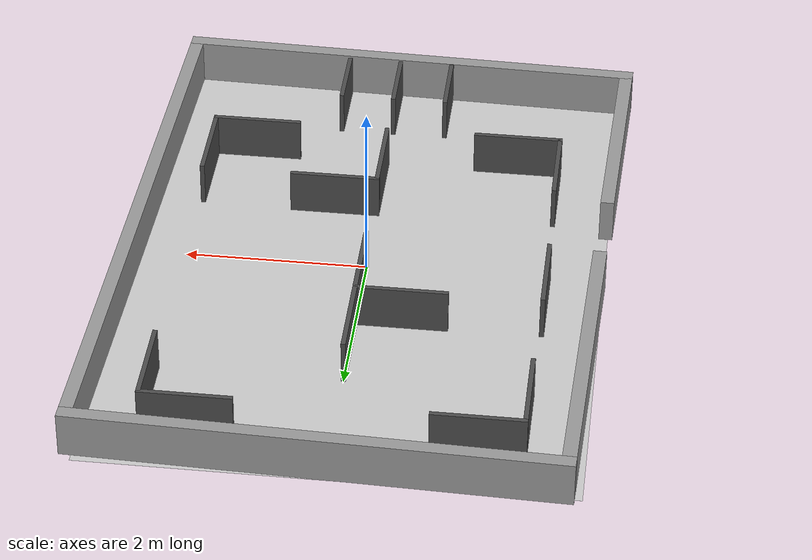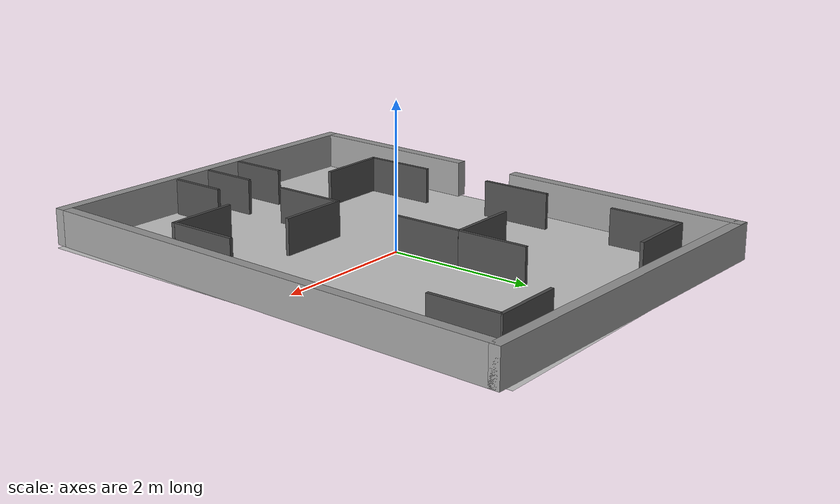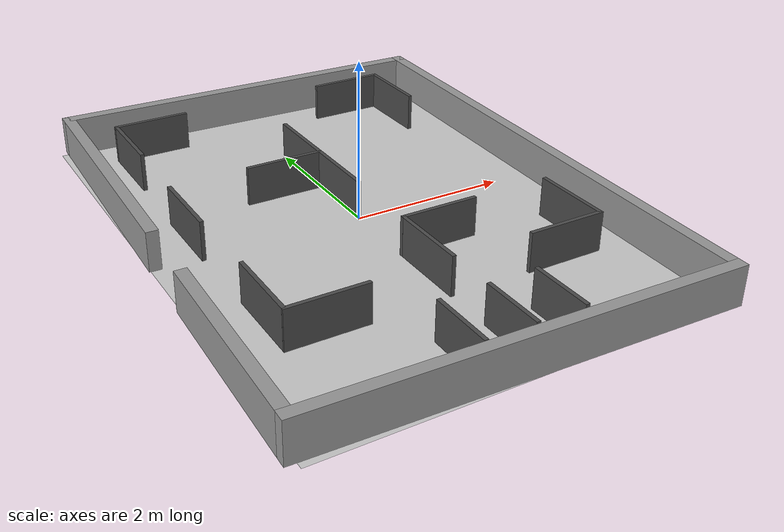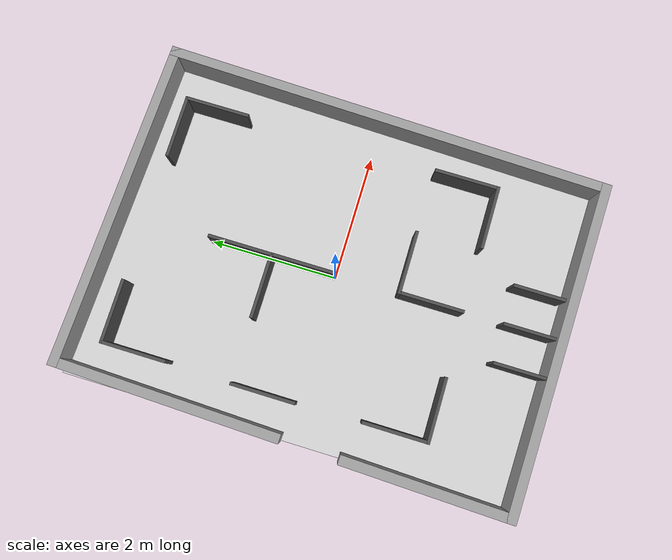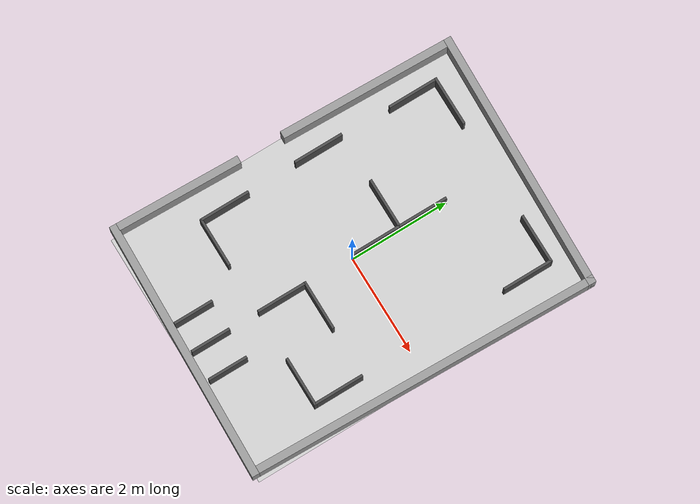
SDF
<?xml version="1.0"?>
<sdf version="1.4">
  <world name="responde">
    <scene>
      <ambient>0.8 0.8 0.8 1</ambient>
      <background>0.7 0.7 0.7 1</background>
      <shadows>true</shadows>
    </scene>

  <!-- A global light source  -->
    <include>
      <uri>model://sun</uri>
      <pose> -2.0 2.0 2.0 0 0 0</pose>
    </include>

  <!-- Piso da sala -->
    <include>
      <uri>model://responde/pisosala</uri>
      <pose> 0 0 0 0 0 -1.6</pose>
    </include>

  <!-- parede -->
    <include>
      <uri>model://responde/parede</uri>
      <pose> 0 0 0 0 0 -1.6</pose>
    </include>

  <!-- parede de separacao -->
    <include>
      <uri>model://responde/parede_01</uri>
      <pose> -1.5 3 0.25 0 0 0</pose>
    </include>
    <include>
      <uri>model://responde/parede_02</uri>
      <pose> -1.975 2.5 0.25 0 0 1.57</pose>
    </include>
    <include>
      <uri>model://responde/parede_07</uri>
      <pose> 1.5 3 0.25 0 0 0</pose>
    </include>
    <include>
      <uri>model://responde/parede_08</uri>
      <pose> 1.975 2.5 0.25 0 0 1.57</pose>
    </include>
    <include>
      <uri>model://responde/parede_03</uri>
      <pose> -1.5 -2.0 0.25 0 0 0</pose>
    </include>
    <include>
      <uri>model://responde/parede_04</uri>
      <pose> -1.975 -1.5 0.25 0 0 1.57</pose>
    </include>
    <include>
      <uri>model://responde/parede_05</uri>
      <pose> 1.975 -1.5 0.25 0 0 1.57</pose>
    </include>
    <include>
      <uri>model://responde/parede_06</uri>
      <pose> 1.5 -2.0 0.25 0 0 0</pose>
    </include>
    <include>
      <uri>model://responde/parede_09</uri>
      <pose> 0 -3 0.25 0 0 1.57</pose>
    </include>
    <include>
      <uri>model://responde/parede_10</uri>
      <pose> -0.6 -3 0.25 0 0 1.57</pose>
    </include>
    <include>
      <uri>model://responde/parede_11</uri>
      <pose> 0.6 -3 0.25 0 0 1.57</pose>
    </include>
    <include>
      <uri>model://responde/parede_12</uri>
      <pose> 0 -1.5 0.25 0 0 1.57</pose>
    </include>
    <include>
      <uri>model://responde/parede_13</uri>
      <pose> 0.475 -1.0 0.25 0 0 0</pose>
    </include>
    <include>
      <uri>model://responde/parede_14</uri>
      <pose> -2 0.5 0.25 0 0 1.57</pose>
    </include>
    <include>
      <uri>model://responde/parede_15</uri>
      <pose> 0 0.5 0.25 0 0 1.57</pose>
    </include>
    <include>
      <uri>model://responde/parede_16</uri>
      <pose> 0 1.5 0.25 0 0 1.57</pose>
    </include>
    <include>
      <uri>model://responde/parede_17</uri>
      <pose> -0.5 1 0.25 0 0 0</pose>
    </include>

  <!-- fisica do mundo -->
    <physics type="ode">
      <real_time_update_rate>1000.0</real_time_update_rate>
      <max_step_size>0.001</max_step_size>
      <real_time_factor>1</real_time_factor>
      <ode>
        <solver>
          <type>quick</type>
          <iters>150</iters>
          <precon_iters>0</precon_iters>
          <sor>1.400000</sor>
          <use_dynamic_moi_rescaling>1</use_dynamic_moi_rescaling>
        </solver>
        <constraints>
          <cfm>0.00001</cfm>
          <erp>0.2</erp>
          <contact_max_correcting_vel>2000.000000</contact_max_correcting_vel>
          <contact_surface_layer>0.01000</contact_surface_layer>
        </constraints>
      </ode>
    </physics>

  <!-- posicao camera inicial -->
    <gui fullscreen='0'>
      <camera name='user_camera'>
        <pose frame=''>0.238775 -6.8831 10.8485 -0 0.979642 1.5602</pose>
        <view_controller>orbit</view_controller>
        <projection_type>perspective</projection_type>
      </camera>
    </gui>

  </world>

</sdf>

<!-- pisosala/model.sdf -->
<sdf version="1.6">
  <model name="piso_sala">
    <static>true</static>
    <link name="course_link">
      <collision name="course_collision">
        <geometry>
          <plane>
            <normal>0 0 1</normal>
            <size>7 5</size>
          </plane>
        </geometry>
        <surface>
          <friction>
            <ode>
              <mu>100</mu>
              <mu2>50</mu2>
            </ode>
          </friction>
        </surface>
      </collision>
      <visual name="course_visual">
        <cast_shadows>false</cast_shadows>
        <geometry>
	        <plane>
            <normal>0 0 1</normal>
            <size>7 5</size>
          </plane>
        </geometry>
	      <material>
          <script>
            <uri>model://caixas_coloridas/pisosala/materials/scripts</uri>
            <uri>model://caixas_coloridas/pisosala/materials/textures</uri>
            <name>pisosala</name>
          </script>
        </material>
      </visual>
    </link>
  </model>
</sdf>

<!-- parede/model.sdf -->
<sdf version='1.7'>
  <model name='parede'>
    <pose>-0.08 -0.03 0 0 -0 0</pose>
    <link name='Wall_0'>
      <collision name='Wall_0_Collision'>
        <geometry>
          <box>
            <size>5.25 0.15 0.5</size>
          </box>
        </geometry>
        <pose>0 0 0.25 0 -0 0</pose>
      </collision>
      <visual name='Wall_0_Visual'>
        <pose>0 0 0.25 0 -0 0</pose>
        <geometry>
          <box>
            <size>5.25 0.15 0.5</size>
          </box>
        </geometry>
        <material>
          <script>
            <uri>file://media/materials/scripts/gazebo.material</uri>
            <name>Gazebo/Grey</name>
          </script>
          <ambient>0.466667 0.462745 0.482353 1</ambient>
        </material>
        <meta>
          <layer>0</layer>
        </meta>
      </visual>
      <pose>-3.5 -0 0 0 -0 1.5708</pose>
    </link>
    <link name='Wall_2'>
      <collision name='Wall_2_Collision'>
        <geometry>
          <box>
            <size>7 0.15 0.5</size>
          </box>
        </geometry>
        <pose>0 0 0.25 0 -0 0</pose>
      </collision>
      <visual name='Wall_2_Visual'>
        <pose>0 0 0.25 0 -0 0</pose>
        <geometry>
          <box>
            <size>7 0.15 0.5</size>
          </box>
        </geometry>
        <material>
          <script>
            <uri>file://media/materials/scripts/gazebo.material</uri>
            <name>Gazebo/Grey</name>
          </script>
          <ambient>0.466667 0.462745 0.482353 1</ambient>
        </material>
        <meta>
          <layer>0</layer>
        </meta>
      </visual>
      <pose>-0.075 2.55 0 0 -0 0</pose>
    </link>
    <link name='Wall_4'>
      <collision name='Wall_4_Collision'>
        <geometry>
          <box>
            <size>5.25 0.15 0.5</size>
          </box>
        </geometry>
        <pose>0 0 0.25 0 -0 0</pose>
      </collision>
      <visual name='Wall_4_Visual'>
        <pose>0 0 0.25 0 -0 0</pose>
        <geometry>
          <box>
            <size>5.25 0.15 0.5</size>
          </box>
        </geometry>
        <material>
          <script>
            <uri>file://media/materials/scripts/gazebo.material</uri>
            <name>Gazebo/Grey</name>
          </script>
          <ambient>0.466667 0.462745 0.482353 1</ambient>
        </material>
        <meta>
          <layer>0</layer>
        </meta>
      </visual>
      <pose>3.5 -0 0 0 -0 1.5708</pose>
    </link>
    <link name='Wall_6'>
      <pose>-0.065 -2.55 0 0 -0 3.14159</pose>
      <visual name='Wall_6_Visual_0'>
        <pose>-2.2375 0 0.25 0 -0 0</pose>
        <geometry>
          <box>
            <size>2.525 0.15 0.5</size>
          </box>
        </geometry>
        <material>
          <script>
            <uri>file://media/materials/scripts/gazebo.material</uri>
            <name>Gazebo/Grey</name>
          </script>
          <ambient>0.466667 0.462745 0.482353 1</ambient>
        </material>
        <meta>
          <layer>0</layer>
        </meta>
      </visual>
      <collision name='Wall_6_Collision_0'>
        <geometry>
          <box>
            <size>2.525 0.15 0.5</size>
          </box>
        </geometry>
        <pose>-2.2375 0 0.25 0 -0 0</pose>
      </collision>
      <visual name='Wall_6_Visual_1'>
        <pose>1.7125 0 0.25 0 -0 0</pose>
        <geometry>
          <box>
            <size>3.575 0.15 0.5</size>
          </box>
        </geometry>
        <material>
          <script>
            <uri>file://media/materials/scripts/gazebo.material</uri>
            <name>Gazebo/Grey</name>
          </script>
          <ambient>0.466667 0.462745 0.482353 1</ambient>
        </material>
        <meta>
          <layer>0</layer>
        </meta>
      </visual>
      <collision name='Wall_6_Collision_1'>
        <geometry>
          <box>
            <size>3.575 0.15 0.5</size>
          </box>
        </geometry>
        <pose>1.7125 0 0.25 0 -0 0</pose>
      </collision>
    </link>
    <static>1</static>
  </model>
</sdf>

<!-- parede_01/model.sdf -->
<sdf version='1.7'>
  <model name='parede_01'>
    <pose>0 0 0 0 0 0</pose>
    <link name='Wall_01'>
      <collision name='Wall_01_Collision'>
        <geometry>
          <box>
            <size>1.0 0.05 0.5</size>
          </box>
        </geometry>
        <pose>0 0 0 0 -0 0</pose>
      </collision>
      <visual name='Wall_01_Visual'>
        <pose>0 0 0 0 -0 0</pose>
        <geometry>
          <box>
            <size>1 0.05 0.5</size>
          </box>
        </geometry>
        <material>
          <script>
            <uri>file://media/materials/scripts/gazebo.material</uri>
            <name>Gazebo/DarkGrey</name>
          </script>
          <ambient>1 1 1 1</ambient>
        </material>
        <meta>
          <layer>0</layer>
        </meta>
      </visual>
      <pose>0 0 0 0 0 0</pose>
    </link>
    <static>1</static>
  </model>
</sdf>

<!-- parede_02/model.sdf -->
<sdf version='1.7'>
  <model name='parede_02'>
    <pose>0 0 0 0 0 1.57</pose>
    <link name='Wall_02'>
      <collision name='Wall_02_Collision'>
        <geometry>
          <box>
            <size>1.0 0.05 0.5</size>
          </box>
        </geometry>
        <pose>0 0 0 0 -0 0</pose>
      </collision>
      <visual name='Wall_02_Visual'>
        <pose>0 0 0 0 -0 0</pose>
        <geometry>
          <box>
            <size>1 0.05 0.5</size>
          </box>
        </geometry>
        <material>
          <script>
            <uri>file://media/materials/scripts/gazebo.material</uri>
            <name>Gazebo/DarkGrey</name>
          </script>
          <ambient>1 1 1 1</ambient>
        </material>
        <meta>
          <layer>0</layer>
        </meta>
      </visual>
      <pose>0 0 0 0 0 0</pose>
    </link>
    <static>1</static>
  </model>
</sdf>

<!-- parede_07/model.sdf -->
<sdf version='1.7'>
  <model name='parede_07'>
    <pose>0 0 0 0 0 1.57</pose>
    <link name='Wall_07'>
      <collision name='Wall_07_Collision'>
        <geometry>
          <box>
            <size>1.0 0.05 0.5</size>
          </box>
        </geometry>
        <pose>0 0 0 0 -0 0</pose>
      </collision>
      <visual name='Wall_07_Visual'>
        <pose>0 0 0 0 -0 0</pose>
        <geometry>
          <box>
            <size>1 0.05 0.5</size>
          </box>
        </geometry>
        <material>
          <script>
            <uri>file://media/materials/scripts/gazebo.material</uri>
            <name>Gazebo/DarkGrey</name>
          </script>
          <ambient>1 1 1 1</ambient>
        </material>
        <meta>
          <layer>0</layer>
        </meta>
      </visual>
      <pose>0 0 0 0 0 0</pose>
    </link>
    <static>1</static>
  </model>
</sdf>

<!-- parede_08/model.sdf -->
<sdf version='1.7'>
  <model name='parede_08'>
    <pose>0 0 0 0 0 1.57</pose>
    <link name='Wall_08'>
      <collision name='Wall_08_Collision'>
        <geometry>
          <box>
            <size>1.0 0.05 0.5</size>
          </box>
        </geometry>
        <pose>0 0 0 0 -0 0</pose>
      </collision>
      <visual name='Wall_08_Visual'>
        <pose>0 0 0 0 -0 0</pose>
        <geometry>
          <box>
            <size>1 0.05 0.5</size>
          </box>
        </geometry>
        <material>
          <script>
            <uri>file://media/materials/scripts/gazebo.material</uri>
            <name>Gazebo/DarkGrey</name>
          </script>
          <ambient>1 1 1 1</ambient>
        </material>
        <meta>
          <layer>0</layer>
        </meta>
      </visual>
      <pose>0 0 0 0 0 0</pose>
    </link>
    <static>1</static>
  </model>
</sdf>

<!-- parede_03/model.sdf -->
<sdf version='1.7'>
  <model name='parede_03'>
    <pose>0 0 0 0 0 1.57</pose>
    <link name='Wall_03'>
      <collision name='Wall_03_Collision'>
        <geometry>
          <box>
            <size>1.0 0.05 0.5</size>
          </box>
        </geometry>
        <pose>0 0 0 0 -0 0</pose>
      </collision>
      <visual name='Wall_03_Visual'>
        <pose>0 0 0 0 -0 0</pose>
        <geometry>
          <box>
            <size>1 0.05 0.5</size>
          </box>
        </geometry>
        <material>
          <script>
            <uri>file://media/materials/scripts/gazebo.material</uri>
            <name>Gazebo/DarkGrey</name>
          </script>
          <ambient>1 1 1 1</ambient>
        </material>
        <meta>
          <layer>0</layer>
        </meta>
      </visual>
      <pose>0 0 0 0 0 0</pose>
    </link>
    <static>1</static>
  </model>
</sdf>

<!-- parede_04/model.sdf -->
<sdf version='1.7'>
  <model name='parede_04'>
    <pose>0 0 0 0 0 1.57</pose>
    <link name='Wall_04'>
      <collision name='Wall_04_Collision'>
        <geometry>
          <box>
            <size>1.0 0.05 0.5</size>
          </box>
        </geometry>
        <pose>0 0 0 0 -0 0</pose>
      </collision>
      <visual name='Wall_04_Visual'>
        <pose>0 0 0 0 -0 0</pose>
        <geometry>
          <box>
            <size>1 0.05 0.5</size>
          </box>
        </geometry>
        <material>
          <script>
            <uri>file://media/materials/scripts/gazebo.material</uri>
            <name>Gazebo/DarkGrey</name>
          </script>
          <ambient>1 1 1 1</ambient>
        </material>
        <meta>
          <layer>0</layer>
        </meta>
      </visual>
      <pose>0 0 0 0 0 0</pose>
    </link>
    <static>1</static>
  </model>
</sdf>

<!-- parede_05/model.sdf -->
<sdf version='1.7'>
  <model name='parede_05'>
    <pose>0 0 0 0 0 1.57</pose>
    <link name='Wall_05'>
      <collision name='Wall_05_Collision'>
        <geometry>
          <box>
            <size>1.0 0.05 0.5</size>
          </box>
        </geometry>
        <pose>0 0 0 0 -0 0</pose>
      </collision>
      <visual name='Wall_05_Visual'>
        <pose>0 0 0 0 -0 0</pose>
        <geometry>
          <box>
            <size>1 0.05 0.5</size>
          </box>
        </geometry>
        <material>
          <script>
            <uri>file://media/materials/scripts/gazebo.material</uri>
            <name>Gazebo/DarkGrey</name>
          </script>
          <ambient>1 1 1 1</ambient>
        </material>
        <meta>
          <layer>0</layer>
        </meta>
      </visual>
      <pose>0 0 0 0 0 0</pose>
    </link>
    <static>1</static>
  </model>
</sdf>

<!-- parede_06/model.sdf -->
<sdf version='1.7'>
  <model name='parede_06'>
    <pose>0 0 0 0 0 1.57</pose>
    <link name='Wall_06'>
      <collision name='Wall_06_Collision'>
        <geometry>
          <box>
            <size>1.0 0.05 0.5</size>
          </box>
        </geometry>
        <pose>0 0 0 0 -0 0</pose>
      </collision>
      <visual name='Wall_06_Visual'>
        <pose>0 0 0 0 -0 0</pose>
        <geometry>
          <box>
            <size>1 0.05 0.5</size>
          </box>
        </geometry>
        <material>
          <script>
            <uri>file://media/materials/scripts/gazebo.material</uri>
            <name>Gazebo/DarkGrey</name>
          </script>
          <ambient>1 1 1 1</ambient>
        </material>
        <meta>
          <layer>0</layer>
        </meta>
      </visual>
      <pose>0 0 0 0 0 0</pose>
    </link>
    <static>1</static>
  </model>
</sdf>

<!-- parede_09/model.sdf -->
<sdf version='1.7'>
  <model name='parede_09'>
    <pose>0 0 0 0 0 1.57</pose>
    <link name='Wall_09'>
      <collision name='Wall_09_Collision'>
        <geometry>
          <box>
            <size>0.8 0.05 0.5</size>
          </box>
        </geometry>
        <pose>0 0 0 0 -0 0</pose>
      </collision>
      <visual name='Wall_09_Visual'>
        <pose>0 0 0 0 -0 0</pose>
        <geometry>
          <box>
            <size>0.8 0.05 0.5</size>
          </box>
        </geometry>
        <material>
          <script>
            <uri>file://media/materials/scripts/gazebo.material</uri>
            <name>Gazebo/DarkGrey</name>
          </script>
          <ambient>1 1 1 1</ambient>
        </material>
        <meta>
          <layer>0</layer>
        </meta>
      </visual>
      <pose>0 0 0 0 0 0</pose>
    </link>
    <static>1</static>
  </model>
</sdf>

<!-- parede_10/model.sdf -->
<sdf version='1.7'>
  <model name='parede_10'>
    <pose>0 0 0 0 0 1.57</pose>
    <link name='Wall_10'>
      <collision name='Wall_10_Collision'>
        <geometry>
          <box>
            <size>0.8 0.05 0.5</size>
          </box>
        </geometry>
        <pose>0 0 0 0 -0 0</pose>
      </collision>
      <visual name='Wall_10_Visual'>
        <pose>0 0 0 0 -0 0</pose>
        <geometry>
          <box>
            <size>0.8 0.05 0.5</size>
          </box>
        </geometry>
        <material>
          <script>
            <uri>file://media/materials/scripts/gazebo.material</uri>
            <name>Gazebo/DarkGrey</name>
          </script>
          <ambient>1 1 1 1</ambient>
        </material>
        <meta>
          <layer>0</layer>
        </meta>
      </visual>
      <pose>0 0 0 0 0 0</pose>
    </link>
    <static>1</static>
  </model>
</sdf>

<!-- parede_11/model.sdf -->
<sdf version='1.7'>
  <model name='parede_11'>
    <pose>0 0 0 0 0 1.57</pose>
    <link name='Wall_11'>
      <collision name='Wall_11_Collision'>
        <geometry>
          <box>
            <size>0.8 0.05 0.5</size>
          </box>
        </geometry>
        <pose>0 0 0 0 -0 0</pose>
      </collision>
      <visual name='Wall_11_Visual'>
        <pose>0 0 0 0 -0 0</pose>
        <geometry>
          <box>
            <size>0.8 0.05 0.5</size>
          </box>
        </geometry>
        <material>
          <script>
            <uri>file://media/materials/scripts/gazebo.material</uri>
            <name>Gazebo/DarkGrey</name>
          </script>
          <ambient>1 1 1 1</ambient>
        </material>
        <meta>
          <layer>0</layer>
        </meta>
      </visual>
      <pose>0 0 0 0 0 0</pose>
    </link>
    <static>1</static>
  </model>
</sdf>

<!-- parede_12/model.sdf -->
<sdf version='1.7'>
  <model name='parede_12'>
    <pose>0 0 0 0 0 1.57</pose>
    <link name='Wall_12'>
      <collision name='Wall_12_Collision'>
        <geometry>
          <box>
            <size>1.0 0.05 0.5</size>
          </box>
        </geometry>
        <pose>0 0 0 0 -0 0</pose>
      </collision>
      <visual name='Wall_12_Visual'>
        <pose>0 0 0 0 -0 0</pose>
        <geometry>
          <box>
            <size>1 0.05 0.5</size>
          </box>
        </geometry>
        <material>
          <script>
            <uri>file://media/materials/scripts/gazebo.material</uri>
            <name>Gazebo/DarkGrey</name>
          </script>
          <ambient>1 1 1 1</ambient>
        </material>
        <meta>
          <layer>0</layer>
        </meta>
      </visual>
      <pose>0 0 0 0 0 0</pose>
    </link>
    <static>1</static>
  </model>
</sdf>

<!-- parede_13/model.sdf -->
<sdf version='1.7'>
  <model name='parede_13'>
    <pose>0 0 0 0 0 1.57</pose>
    <link name='Wall_13'>
      <collision name='Wall_13_Collision'>
        <geometry>
          <box>
            <size>1.0 0.05 0.5</size>
          </box>
        </geometry>
        <pose>0 0 0 0 -0 0</pose>
      </collision>
      <visual name='Wall_13_Visual'>
        <pose>0 0 0 0 -0 0</pose>
        <geometry>
          <box>
            <size>1 0.05 0.5</size>
          </box>
        </geometry>
        <material>
          <script>
            <uri>file://media/materials/scripts/gazebo.material</uri>
            <name>Gazebo/DarkGrey</name>
          </script>
          <ambient>1 1 1 1</ambient>
        </material>
        <meta>
          <layer>0</layer>
        </meta>
      </visual>
      <pose>0 0 0 0 0 0</pose>
    </link>
    <static>1</static>
  </model>
</sdf>

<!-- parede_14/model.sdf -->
<sdf version='1.7'>
  <model name='parede_14'>
    <pose>0 0 0 0 0 1.57</pose>
    <link name='Wall_14'>
      <collision name='Wall_14_Collision'>
        <geometry>
          <box>
            <size>1.0 0.05 0.5</size>
          </box>
        </geometry>
        <pose>0 0 0 0 -0 0</pose>
      </collision>
      <visual name='Wall_14_Visual'>
        <pose>0 0 0 0 -0 0</pose>
        <geometry>
          <box>
            <size>1 0.05 0.5</size>
          </box>
        </geometry>
        <material>
          <script>
            <uri>file://media/materials/scripts/gazebo.material</uri>
            <name>Gazebo/DarkGrey</name>
          </script>
          <ambient>1 1 1 1</ambient>
        </material>
        <meta>
          <layer>0</layer>
        </meta>
      </visual>
      <pose>0 0 0 0 0 0</pose>
    </link>
    <static>1</static>
  </model>
</sdf>

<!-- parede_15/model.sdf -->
<sdf version='1.7'>
  <model name='parede_15'>
    <pose>0 0 0 0 0 1.57</pose>
    <link name='Wall_15'>
      <collision name='Wall_15_Collision'>
        <geometry>
          <box>
            <size>1.0 0.05 0.5</size>
          </box>
        </geometry>
        <pose>0 0 0 0 -0 0</pose>
      </collision>
      <visual name='Wall_15_Visual'>
        <pose>0 0 0 0 -0 0</pose>
        <geometry>
          <box>
            <size>1 0.05 0.5</size>
          </box>
        </geometry>
        <material>
          <script>
            <uri>file://media/materials/scripts/gazebo.material</uri>
            <name>Gazebo/DarkGrey</name>
          </script>
          <ambient>1 1 1 1</ambient>
        </material>
        <meta>
          <layer>0</layer>
        </meta>
      </visual>
      <pose>0 0 0 0 0 0</pose>
    </link>
    <static>1</static>
  </model>
</sdf>

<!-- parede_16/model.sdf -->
<sdf version='1.7'>
  <model name='parede_16'>
    <pose>0 0 0 0 0 1.57</pose>
    <link name='Wall_16'>
      <collision name='Wall_16_Collision'>
        <geometry>
          <box>
            <size>1.0 0.05 0.5</size>
          </box>
        </geometry>
        <pose>0 0 0 0 -0 0</pose>
      </collision>
      <visual name='Wall_16_Visual'>
        <pose>0 0 0 0 -0 0</pose>
        <geometry>
          <box>
            <size>1 0.05 0.5</size>
          </box>
        </geometry>
        <material>
          <script>
            <uri>file://media/materials/scripts/gazebo.material</uri>
            <name>Gazebo/DarkGrey</name>
          </script>
          <ambient>1 1 1 1</ambient>
        </material>
        <meta>
          <layer>0</layer>
        </meta>
      </visual>
      <pose>0 0 0 0 0 0</pose>
    </link>
    <static>1</static>
  </model>
</sdf>

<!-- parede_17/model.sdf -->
<sdf version='1.7'>
  <model name='parede_17'>
    <pose>0 0 0 0 0 1.57</pose>
    <link name='Wall_17'>
      <collision name='Wall_17_Collision'>
        <geometry>
          <box>
            <size>1.0 0.05 0.5</size>
          </box>
        </geometry>
        <pose>0 0 0 0 -0 0</pose>
      </collision>
      <visual name='Wall_17_Visual'>
        <pose>0 0 0 0 -0 0</pose>
        <geometry>
          <box>
            <size>1 0.05 0.5</size>
          </box>
        </geometry>
        <material>
          <script>
            <uri>file://media/materials/scripts/gazebo.material</uri>
            <name>Gazebo/DarkGrey</name>
          </script>
          <ambient>1 1 1 1</ambient>
        </material>
        <meta>
          <layer>0</layer>
        </meta>
      </visual>
      <pose>0 0 0 0 0 0</pose>
    </link>
    <static>1</static>
  </model>
</sdf>
